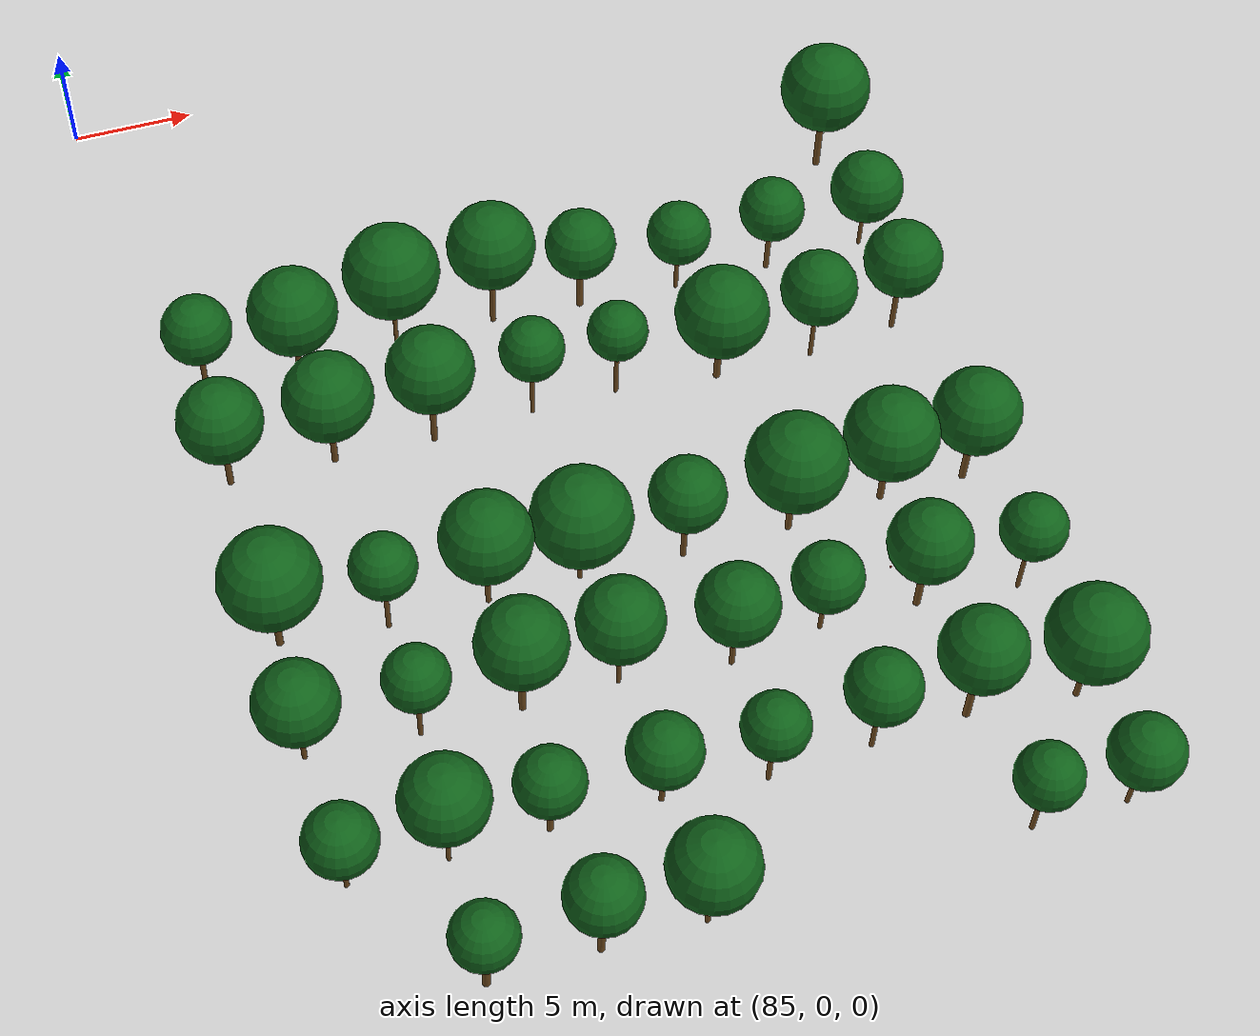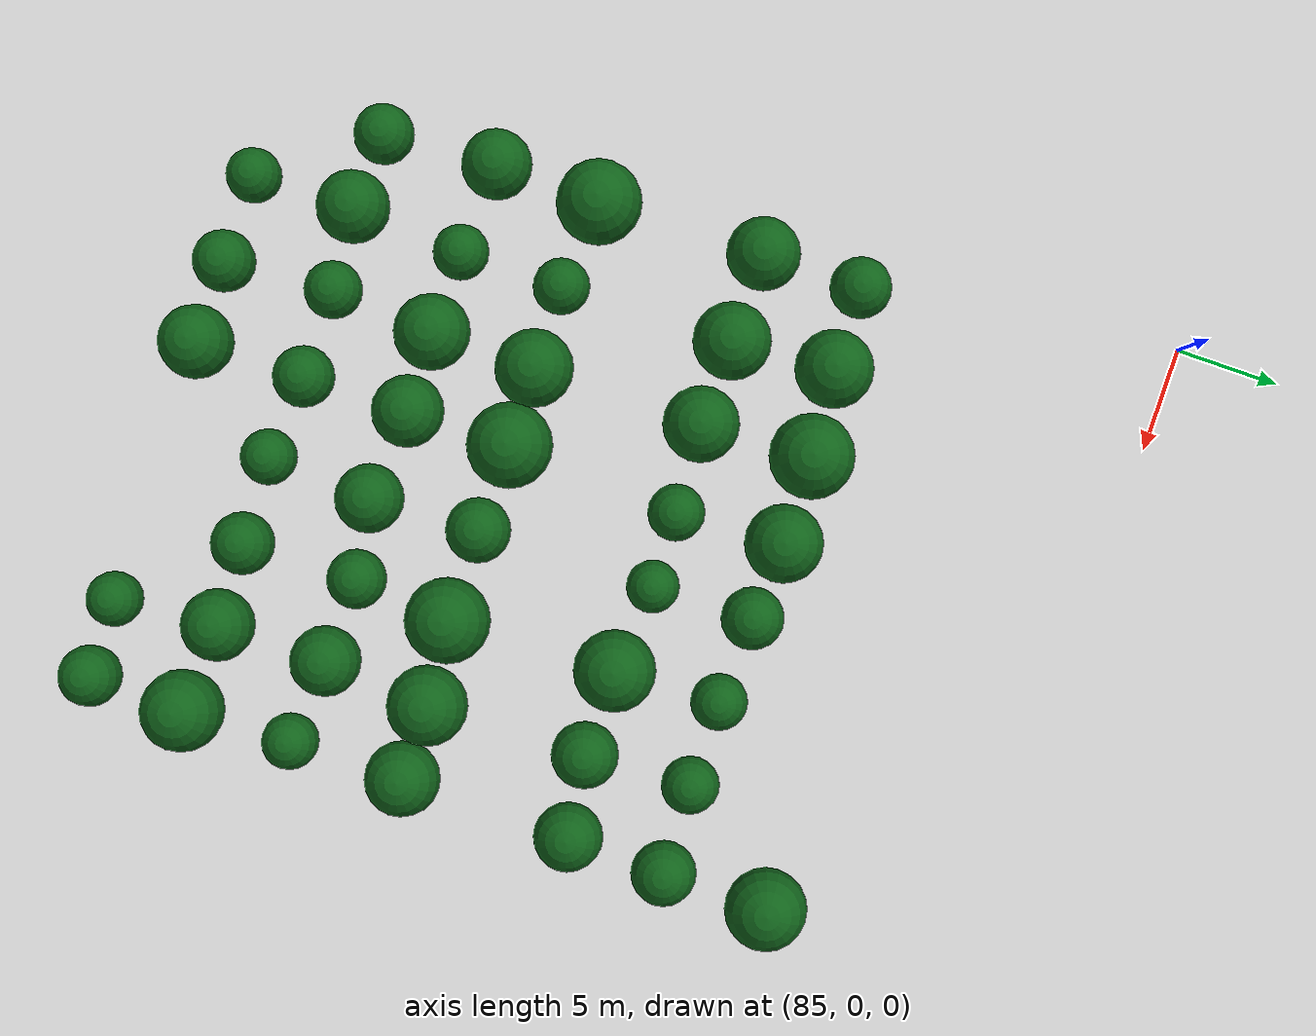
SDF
<sdf version="1.9">
 <world name="cheongsong_orchard">
  <model name="apple_tree_828">
   <static>true</static>
   <pose>91.80 -43.27 0 0 0 0</pose>
   <link name="link">
    <collision name="trunk_col">
     <pose>0 0 1.26 0 0 0</pose>
     <geometry><cylinder><radius>0.147</radius><length>2.52</length></cylinder></geometry>
    </collision>
    <visual name="trunk_vis">
     <pose>0 0 1.26 0 0 0</pose>
     <geometry><cylinder><radius>0.147</radius><length>2.52</length></cylinder></geometry>
     <material><ambient>0.35 0.22 0.08 1</ambient><diffuse>0.45 0.30 0.12 1</diffuse></material>
    </visual>
    <collision name="canopy_col">
     <pose>0 0 3.78 0 0 0</pose>
     <geometry><sphere><radius>1.26</radius></sphere></geometry>
    </collision>
    <visual name="canopy_vis">
     <pose>0 0 3.78 0 0 0</pose>
     <geometry><sphere><radius>1.26</radius></sphere></geometry>
     <material><ambient>0.04 0.28 0.06 1</ambient><diffuse>0.06 0.38 0.10 1</diffuse></material>
    </visual>
   </link>
  </model>
  <model name="apple_tree_829">
   <static>true</static>
   <pose>95.95 -43.17 0 0 0 0</pose>
   <link name="link">
    <collision name="trunk_col">
     <pose>0 0 1.39 0 0 0</pose>
     <geometry><cylinder><radius>0.133</radius><length>2.79</length></cylinder></geometry>
    </collision>
    <visual name="trunk_vis">
     <pose>0 0 1.39 0 0 0</pose>
     <geometry><cylinder><radius>0.133</radius><length>2.79</length></cylinder></geometry>
     <material><ambient>0.35 0.22 0.08 1</ambient><diffuse>0.45 0.30 0.12 1</diffuse></material>
    </visual>
    <collision name="canopy_col">
     <pose>0 0 4.21 0 0 0</pose>
     <geometry><sphere><radius>1.42</radius></sphere></geometry>
    </collision>
    <visual name="canopy_vis">
     <pose>0 0 4.21 0 0 0</pose>
     <geometry><sphere><radius>1.42</radius></sphere></geometry>
     <material><ambient>0.04 0.28 0.06 1</ambient><diffuse>0.06 0.38 0.10 1</diffuse></material>
    </visual>
   </link>
  </model>
  <model name="apple_tree_830">
   <static>true</static>
   <pose>99.82 -43.18 0 0 0 0</pose>
   <link name="link">
    <collision name="trunk_col">
     <pose>0 0 1.27 0 0 0</pose>
     <geometry><cylinder><radius>0.097</radius><length>2.54</length></cylinder></geometry>
    </collision>
    <visual name="trunk_vis">
     <pose>0 0 1.27 0 0 0</pose>
     <geometry><cylinder><radius>0.097</radius><length>2.54</length></cylinder></geometry>
     <material><ambient>0.35 0.22 0.08 1</ambient><diffuse>0.45 0.30 0.12 1</diffuse></material>
    </visual>
    <collision name="canopy_col">
     <pose>0 0 4.25 0 0 0</pose>
     <geometry><sphere><radius>1.70</radius></sphere></geometry>
    </collision>
    <visual name="canopy_vis">
     <pose>0 0 4.25 0 0 0</pose>
     <geometry><sphere><radius>1.70</radius></sphere></geometry>
     <material><ambient>0.04 0.28 0.06 1</ambient><diffuse>0.06 0.38 0.10 1</diffuse></material>
    </visual>
   </link>
  </model>
  <model name="apple_tree_833">
   <static>true</static>
   <pose>112.10 -43.00 0 0 0 0</pose>
   <link name="link">
    <collision name="trunk_col">
     <pose>0 0 1.28 0 0 0</pose>
     <geometry><cylinder><radius>0.100</radius><length>2.56</length></cylinder></geometry>
    </collision>
    <visual name="trunk_vis">
     <pose>0 0 1.28 0 0 0</pose>
     <geometry><cylinder><radius>0.100</radius><length>2.56</length></cylinder></geometry>
     <material><ambient>0.35 0.22 0.08 1</ambient><diffuse>0.45 0.30 0.12 1</diffuse></material>
    </visual>
    <collision name="canopy_col">
     <pose>0 0 3.82 0 0 0</pose>
     <geometry><sphere><radius>1.27</radius></sphere></geometry>
    </collision>
    <visual name="canopy_vis">
     <pose>0 0 3.82 0 0 0</pose>
     <geometry><sphere><radius>1.27</radius></sphere></geometry>
     <material><ambient>0.04 0.28 0.06 1</ambient><diffuse>0.06 0.38 0.10 1</diffuse></material>
    </visual>
   </link>
  </model>
  <model name="apple_tree_834">
   <static>true</static>
   <pose>115.81 -42.98 0 0 0 0</pose>
   <link name="link">
    <collision name="trunk_col">
     <pose>0 0 1.11 0 0 0</pose>
     <geometry><cylinder><radius>0.089</radius><length>2.22</length></cylinder></geometry>
    </collision>
    <visual name="trunk_vis">
     <pose>0 0 1.11 0 0 0</pose>
     <geometry><cylinder><radius>0.089</radius><length>2.22</length></cylinder></geometry>
     <material><ambient>0.35 0.22 0.08 1</ambient><diffuse>0.45 0.30 0.12 1</diffuse></material>
    </visual>
    <collision name="canopy_col">
     <pose>0 0 3.65 0 0 0</pose>
     <geometry><sphere><radius>1.42</radius></sphere></geometry>
    </collision>
    <visual name="canopy_vis">
     <pose>0 0 3.65 0 0 0</pose>
     <geometry><sphere><radius>1.42</radius></sphere></geometry>
     <material><ambient>0.04 0.28 0.06 1</ambient><diffuse>0.06 0.38 0.10 1</diffuse></material>
    </visual>
   </link>
  </model>
  <model name="apple_tree_882">
   <static>true</static>
   <pose>88.05 -38.35 0 0 0 0</pose>
   <link name="link">
    <collision name="trunk_col">
     <pose>0 0 1.03 0 0 0</pose>
     <geometry><cylinder><radius>0.096</radius><length>2.06</length></cylinder></geometry>
    </collision>
    <visual name="trunk_vis">
     <pose>0 0 1.03 0 0 0</pose>
     <geometry><cylinder><radius>0.096</radius><length>2.06</length></cylinder></geometry>
     <material><ambient>0.35 0.22 0.08 1</ambient><diffuse>0.45 0.30 0.12 1</diffuse></material>
    </visual>
    <collision name="canopy_col">
     <pose>0 0 3.45 0 0 0</pose>
     <geometry><sphere><radius>1.39</radius></sphere></geometry>
    </collision>
    <visual name="canopy_vis">
     <pose>0 0 3.45 0 0 0</pose>
     <geometry><sphere><radius>1.39</radius></sphere></geometry>
     <material><ambient>0.04 0.28 0.06 1</ambient><diffuse>0.06 0.38 0.10 1</diffuse></material>
    </visual>
   </link>
  </model>
  <model name="apple_tree_883">
   <static>true</static>
   <pose>91.76 -38.37 0 0 0 0</pose>
   <link name="link">
    <collision name="trunk_col">
     <pose>0 0 1.41 0 0 0</pose>
     <geometry><cylinder><radius>0.085</radius><length>2.82</length></cylinder></geometry>
    </collision>
    <visual name="trunk_vis">
     <pose>0 0 1.41 0 0 0</pose>
     <geometry><cylinder><radius>0.085</radius><length>2.82</length></cylinder></geometry>
     <material><ambient>0.35 0.22 0.08 1</ambient><diffuse>0.45 0.30 0.12 1</diffuse></material>
    </visual>
    <collision name="canopy_col">
     <pose>0 0 4.49 0 0 0</pose>
     <geometry><sphere><radius>1.67</radius></sphere></geometry>
    </collision>
    <visual name="canopy_vis">
     <pose>0 0 4.49 0 0 0</pose>
     <geometry><sphere><radius>1.67</radius></sphere></geometry>
     <material><ambient>0.04 0.28 0.06 1</ambient><diffuse>0.06 0.38 0.10 1</diffuse></material>
    </visual>
   </link>
  </model>
  <model name="apple_tree_884">
   <static>true</static>
   <pose>95.54 -38.23 0 0 0 0</pose>
   <link name="link">
    <collision name="trunk_col">
     <pose>0 0 1.08 0 0 0</pose>
     <geometry><cylinder><radius>0.123</radius><length>2.16</length></cylinder></geometry>
    </collision>
    <visual name="trunk_vis">
     <pose>0 0 1.08 0 0 0</pose>
     <geometry><cylinder><radius>0.123</radius><length>2.16</length></cylinder></geometry>
     <material><ambient>0.35 0.22 0.08 1</ambient><diffuse>0.45 0.30 0.12 1</diffuse></material>
    </visual>
    <collision name="canopy_col">
     <pose>0 0 3.50 0 0 0</pose>
     <geometry><sphere><radius>1.34</radius></sphere></geometry>
    </collision>
    <visual name="canopy_vis">
     <pose>0 0 3.50 0 0 0</pose>
     <geometry><sphere><radius>1.34</radius></sphere></geometry>
     <material><ambient>0.04 0.28 0.06 1</ambient><diffuse>0.06 0.38 0.10 1</diffuse></material>
    </visual>
   </link>
  </model>
  <model name="apple_tree_885">
   <static>true</static>
   <pose>99.73 -38.21 0 0 0 0</pose>
   <link name="link">
    <collision name="trunk_col">
     <pose>0 0 1.07 0 0 0</pose>
     <geometry><cylinder><radius>0.105</radius><length>2.14</length></cylinder></geometry>
    </collision>
    <visual name="trunk_vis">
     <pose>0 0 1.07 0 0 0</pose>
     <geometry><cylinder><radius>0.105</radius><length>2.14</length></cylinder></geometry>
     <material><ambient>0.35 0.22 0.08 1</ambient><diffuse>0.45 0.30 0.12 1</diffuse></material>
    </visual>
    <collision name="canopy_col">
     <pose>0 0 3.56 0 0 0</pose>
     <geometry><sphere><radius>1.42</radius></sphere></geometry>
    </collision>
    <visual name="canopy_vis">
     <pose>0 0 3.56 0 0 0</pose>
     <geometry><sphere><radius>1.42</radius></sphere></geometry>
     <material><ambient>0.04 0.28 0.06 1</ambient><diffuse>0.06 0.38 0.10 1</diffuse></material>
    </visual>
   </link>
  </model>
  <model name="apple_tree_886">
   <static>true</static>
   <pose>103.71 -38.47 0 0 0 0</pose>
   <link name="link">
    <collision name="trunk_col">
     <pose>0 0 1.25 0 0 0</pose>
     <geometry><cylinder><radius>0.100</radius><length>2.50</length></cylinder></geometry>
    </collision>
    <visual name="trunk_vis">
     <pose>0 0 1.25 0 0 0</pose>
     <geometry><cylinder><radius>0.100</radius><length>2.50</length></cylinder></geometry>
     <material><ambient>0.35 0.22 0.08 1</ambient><diffuse>0.45 0.30 0.12 1</diffuse></material>
    </visual>
    <collision name="canopy_col">
     <pose>0 0 3.79 0 0 0</pose>
     <geometry><sphere><radius>1.29</radius></sphere></geometry>
    </collision>
    <visual name="canopy_vis">
     <pose>0 0 3.79 0 0 0</pose>
     <geometry><sphere><radius>1.29</radius></sphere></geometry>
     <material><ambient>0.04 0.28 0.06 1</ambient><diffuse>0.06 0.38 0.10 1</diffuse></material>
    </visual>
   </link>
  </model>
  <model name="apple_tree_887">
   <static>true</static>
   <pose>107.79 -38.24 0 0 0 0</pose>
   <link name="link">
    <collision name="trunk_col">
     <pose>0 0 1.35 0 0 0</pose>
     <geometry><cylinder><radius>0.095</radius><length>2.69</length></cylinder></geometry>
    </collision>
    <visual name="trunk_vis">
     <pose>0 0 1.35 0 0 0</pose>
     <geometry><cylinder><radius>0.095</radius><length>2.69</length></cylinder></geometry>
     <material><ambient>0.35 0.22 0.08 1</ambient><diffuse>0.45 0.30 0.12 1</diffuse></material>
    </visual>
    <collision name="canopy_col">
     <pose>0 0 4.13 0 0 0</pose>
     <geometry><sphere><radius>1.44</radius></sphere></geometry>
    </collision>
    <visual name="canopy_vis">
     <pose>0 0 4.13 0 0 0</pose>
     <geometry><sphere><radius>1.44</radius></sphere></geometry>
     <material><ambient>0.04 0.28 0.06 1</ambient><diffuse>0.06 0.38 0.10 1</diffuse></material>
    </visual>
   </link>
  </model>
  <model name="apple_tree_888">
   <static>true</static>
   <pose>111.60 -38.01 0 0 0 0</pose>
   <link name="link">
    <collision name="trunk_col">
     <pose>0 0 1.44 0 0 0</pose>
     <geometry><cylinder><radius>0.143</radius><length>2.88</length></cylinder></geometry>
    </collision>
    <visual name="trunk_vis">
     <pose>0 0 1.44 0 0 0</pose>
     <geometry><cylinder><radius>0.143</radius><length>2.88</length></cylinder></geometry>
     <material><ambient>0.35 0.22 0.08 1</ambient><diffuse>0.45 0.30 0.12 1</diffuse></material>
    </visual>
    <collision name="canopy_col">
     <pose>0 0 4.54 0 0 0</pose>
     <geometry><sphere><radius>1.66</radius></sphere></geometry>
    </collision>
    <visual name="canopy_vis">
     <pose>0 0 4.54 0 0 0</pose>
     <geometry><sphere><radius>1.66</radius></sphere></geometry>
     <material><ambient>0.04 0.28 0.06 1</ambient><diffuse>0.06 0.38 0.10 1</diffuse></material>
    </visual>
   </link>
  </model>
  <model name="apple_tree_889">
   <static>true</static>
   <pose>115.84 -38.35 0 0 0 0</pose>
   <link name="link">
    <collision name="trunk_col">
     <pose>0 0 1.18 0 0 0</pose>
     <geometry><cylinder><radius>0.117</radius><length>2.35</length></cylinder></geometry>
    </collision>
    <visual name="trunk_vis">
     <pose>0 0 1.18 0 0 0</pose>
     <geometry><cylinder><radius>0.117</radius><length>2.35</length></cylinder></geometry>
     <material><ambient>0.35 0.22 0.08 1</ambient><diffuse>0.45 0.30 0.12 1</diffuse></material>
    </visual>
    <collision name="canopy_col">
     <pose>0 0 4.24 0 0 0</pose>
     <geometry><sphere><radius>1.89</radius></sphere></geometry>
    </collision>
    <visual name="canopy_vis">
     <pose>0 0 4.24 0 0 0</pose>
     <geometry><sphere><radius>1.89</radius></sphere></geometry>
     <material><ambient>0.04 0.28 0.06 1</ambient><diffuse>0.06 0.38 0.10 1</diffuse></material>
    </visual>
   </link>
  </model>
  <model name="apple_tree_934">
   <static>true</static>
   <pose>87.76 -32.94 0 0 0 0</pose>
   <link name="link">
    <collision name="trunk_col">
     <pose>0 0 1.15 0 0 0</pose>
     <geometry><cylinder><radius>0.100</radius><length>2.30</length></cylinder></geometry>
    </collision>
    <visual name="trunk_vis">
     <pose>0 0 1.15 0 0 0</pose>
     <geometry><cylinder><radius>0.100</radius><length>2.30</length></cylinder></geometry>
     <material><ambient>0.35 0.22 0.08 1</ambient><diffuse>0.45 0.30 0.12 1</diffuse></material>
    </visual>
    <collision name="canopy_col">
     <pose>0 0 3.92 0 0 0</pose>
     <geometry><sphere><radius>1.62</radius></sphere></geometry>
    </collision>
    <visual name="canopy_vis">
     <pose>0 0 3.92 0 0 0</pose>
     <geometry><sphere><radius>1.62</radius></sphere></geometry>
     <material><ambient>0.04 0.28 0.06 1</ambient><diffuse>0.06 0.38 0.10 1</diffuse></material>
    </visual>
   </link>
  </model>
  <model name="apple_tree_935">
   <static>true</static>
   <pose>92.07 -33.18 0 0 0 0</pose>
   <link name="link">
    <collision name="trunk_col">
     <pose>0 0 1.35 0 0 0</pose>
     <geometry><cylinder><radius>0.093</radius><length>2.70</length></cylinder></geometry>
    </collision>
    <visual name="trunk_vis">
     <pose>0 0 1.35 0 0 0</pose>
     <geometry><cylinder><radius>0.093</radius><length>2.70</length></cylinder></geometry>
     <material><ambient>0.35 0.22 0.08 1</ambient><diffuse>0.45 0.30 0.12 1</diffuse></material>
    </visual>
    <collision name="canopy_col">
     <pose>0 0 3.97 0 0 0</pose>
     <geometry><sphere><radius>1.28</radius></sphere></geometry>
    </collision>
    <visual name="canopy_vis">
     <pose>0 0 3.97 0 0 0</pose>
     <geometry><sphere><radius>1.28</radius></sphere></geometry>
     <material><ambient>0.04 0.28 0.06 1</ambient><diffuse>0.06 0.38 0.10 1</diffuse></material>
    </visual>
   </link>
  </model>
  <model name="apple_tree_936">
   <static>true</static>
   <pose>95.96 -33.16 0 0 0 0</pose>
   <link name="link">
    <collision name="trunk_col">
     <pose>0 0 1.40 0 0 0</pose>
     <geometry><cylinder><radius>0.138</radius><length>2.80</length></cylinder></geometry>
    </collision>
    <visual name="trunk_vis">
     <pose>0 0 1.40 0 0 0</pose>
     <geometry><cylinder><radius>0.138</radius><length>2.80</length></cylinder></geometry>
     <material><ambient>0.35 0.22 0.08 1</ambient><diffuse>0.45 0.30 0.12 1</diffuse></material>
    </visual>
    <collision name="canopy_col">
     <pose>0 0 4.55 0 0 0</pose>
     <geometry><sphere><radius>1.75</radius></sphere></geometry>
    </collision>
    <visual name="canopy_vis">
     <pose>0 0 4.55 0 0 0</pose>
     <geometry><sphere><radius>1.75</radius></sphere></geometry>
     <material><ambient>0.04 0.28 0.06 1</ambient><diffuse>0.06 0.38 0.10 1</diffuse></material>
    </visual>
   </link>
  </model>
  <model name="apple_tree_937">
   <static>true</static>
   <pose>99.69 -33.08 0 0 0 0</pose>
   <link name="link">
    <collision name="trunk_col">
     <pose>0 0 1.31 0 0 0</pose>
     <geometry><cylinder><radius>0.087</radius><length>2.62</length></cylinder></geometry>
    </collision>
    <visual name="trunk_vis">
     <pose>0 0 1.31 0 0 0</pose>
     <geometry><cylinder><radius>0.087</radius><length>2.62</length></cylinder></geometry>
     <material><ambient>0.35 0.22 0.08 1</ambient><diffuse>0.45 0.30 0.12 1</diffuse></material>
    </visual>
    <collision name="canopy_col">
     <pose>0 0 4.29 0 0 0</pose>
     <geometry><sphere><radius>1.66</radius></sphere></geometry>
    </collision>
    <visual name="canopy_vis">
     <pose>0 0 4.29 0 0 0</pose>
     <geometry><sphere><radius>1.66</radius></sphere></geometry>
     <material><ambient>0.04 0.28 0.06 1</ambient><diffuse>0.06 0.38 0.10 1</diffuse></material>
    </visual>
   </link>
  </model>
  <model name="apple_tree_938">
   <static>true</static>
   <pose>104.00 -33.48 0 0 0 0</pose>
   <link name="link">
    <collision name="trunk_col">
     <pose>0 0 1.23 0 0 0</pose>
     <geometry><cylinder><radius>0.106</radius><length>2.46</length></cylinder></geometry>
    </collision>
    <visual name="trunk_vis">
     <pose>0 0 1.23 0 0 0</pose>
     <geometry><cylinder><radius>0.106</radius><length>2.46</length></cylinder></geometry>
     <material><ambient>0.35 0.22 0.08 1</ambient><diffuse>0.45 0.30 0.12 1</diffuse></material>
    </visual>
    <collision name="canopy_col">
     <pose>0 0 4.04 0 0 0</pose>
     <geometry><sphere><radius>1.59</radius></sphere></geometry>
    </collision>
    <visual name="canopy_vis">
     <pose>0 0 4.04 0 0 0</pose>
     <geometry><sphere><radius>1.59</radius></sphere></geometry>
     <material><ambient>0.04 0.28 0.06 1</ambient><diffuse>0.06 0.38 0.10 1</diffuse></material>
    </visual>
   </link>
  </model>
  <model name="apple_tree_939">
   <static>true</static>
   <pose>107.71 -32.94 0 0 0 0</pose>
   <link name="link">
    <collision name="trunk_col">
     <pose>0 0 1.02 0 0 0</pose>
     <geometry><cylinder><radius>0.091</radius><length>2.05</length></cylinder></geometry>
    </collision>
    <visual name="trunk_vis">
     <pose>0 0 1.02 0 0 0</pose>
     <geometry><cylinder><radius>0.091</radius><length>2.05</length></cylinder></geometry>
     <material><ambient>0.35 0.22 0.08 1</ambient><diffuse>0.45 0.30 0.12 1</diffuse></material>
    </visual>
    <collision name="canopy_col">
     <pose>0 0 3.43 0 0 0</pose>
     <geometry><sphere><radius>1.38</radius></sphere></geometry>
    </collision>
    <visual name="canopy_vis">
     <pose>0 0 3.43 0 0 0</pose>
     <geometry><sphere><radius>1.38</radius></sphere></geometry>
     <material><ambient>0.04 0.28 0.06 1</ambient><diffuse>0.06 0.38 0.10 1</diffuse></material>
    </visual>
   </link>
  </model>
  <model name="apple_tree_940">
   <static>true</static>
   <pose>111.62 -32.95 0 0 0 0</pose>
   <link name="link">
    <collision name="trunk_col">
     <pose>0 0 1.27 0 0 0</pose>
     <geometry><cylinder><radius>0.138</radius><length>2.55</length></cylinder></geometry>
    </collision>
    <visual name="trunk_vis">
     <pose>0 0 1.27 0 0 0</pose>
     <geometry><cylinder><radius>0.138</radius><length>2.55</length></cylinder></geometry>
     <material><ambient>0.35 0.22 0.08 1</ambient><diffuse>0.45 0.30 0.12 1</diffuse></material>
    </visual>
    <collision name="canopy_col">
     <pose>0 0 4.17 0 0 0</pose>
     <geometry><sphere><radius>1.62</radius></sphere></geometry>
    </collision>
    <visual name="canopy_vis">
     <pose>0 0 4.17 0 0 0</pose>
     <geometry><sphere><radius>1.62</radius></sphere></geometry>
     <material><ambient>0.04 0.28 0.06 1</ambient><diffuse>0.06 0.38 0.10 1</diffuse></material>
    </visual>
   </link>
  </model>
  <model name="apple_tree_941">
   <static>true</static>
   <pose>115.61 -33.31 0 0 0 0</pose>
   <link name="link">
    <collision name="trunk_col">
     <pose>0 0 1.34 0 0 0</pose>
     <geometry><cylinder><radius>0.088</radius><length>2.68</length></cylinder></geometry>
    </collision>
    <visual name="trunk_vis">
     <pose>0 0 1.34 0 0 0</pose>
     <geometry><cylinder><radius>0.088</radius><length>2.68</length></cylinder></geometry>
     <material><ambient>0.35 0.22 0.08 1</ambient><diffuse>0.45 0.30 0.12 1</diffuse></material>
    </visual>
    <collision name="canopy_col">
     <pose>0 0 3.98 0 0 0</pose>
     <geometry><sphere><radius>1.30</radius></sphere></geometry>
    </collision>
    <visual name="canopy_vis">
     <pose>0 0 3.98 0 0 0</pose>
     <geometry><sphere><radius>1.30</radius></sphere></geometry>
     <material><ambient>0.04 0.28 0.06 1</ambient><diffuse>0.06 0.38 0.10 1</diffuse></material>
    </visual>
   </link>
  </model>
  <model name="apple_tree_991">
   <static>true</static>
   <pose>87.95 -27.93 0 0 0 0</pose>
   <link name="link">
    <collision name="trunk_col">
     <pose>0 0 1.23 0 0 0</pose>
     <geometry><cylinder><radius>0.138</radius><length>2.46</length></cylinder></geometry>
    </collision>
    <visual name="trunk_vis">
     <pose>0 0 1.23 0 0 0</pose>
     <geometry><cylinder><radius>0.138</radius><length>2.46</length></cylinder></geometry>
     <material><ambient>0.35 0.22 0.08 1</ambient><diffuse>0.45 0.30 0.12 1</diffuse></material>
    </visual>
    <collision name="canopy_col">
     <pose>0 0 4.42 0 0 0</pose>
     <geometry><sphere><radius>1.96</radius></sphere></geometry>
    </collision>
    <visual name="canopy_vis">
     <pose>0 0 4.42 0 0 0</pose>
     <geometry><sphere><radius>1.96</radius></sphere></geometry>
     <material><ambient>0.04 0.28 0.06 1</ambient><diffuse>0.06 0.38 0.10 1</diffuse></material>
    </visual>
   </link>
  </model>
  <model name="apple_tree_992">
   <static>true</static>
   <pose>92.07 -28.34 0 0 0 0</pose>
   <link name="link">
    <collision name="trunk_col">
     <pose>0 0 1.41 0 0 0</pose>
     <geometry><cylinder><radius>0.097</radius><length>2.81</length></cylinder></geometry>
    </collision>
    <visual name="trunk_vis">
     <pose>0 0 1.41 0 0 0</pose>
     <geometry><cylinder><radius>0.097</radius><length>2.81</length></cylinder></geometry>
     <material><ambient>0.35 0.22 0.08 1</ambient><diffuse>0.45 0.30 0.12 1</diffuse></material>
    </visual>
    <collision name="canopy_col">
     <pose>0 0 4.11 0 0 0</pose>
     <geometry><sphere><radius>1.30</radius></sphere></geometry>
    </collision>
    <visual name="canopy_vis">
     <pose>0 0 4.11 0 0 0</pose>
     <geometry><sphere><radius>1.30</radius></sphere></geometry>
     <material><ambient>0.04 0.28 0.06 1</ambient><diffuse>0.06 0.38 0.10 1</diffuse></material>
    </visual>
   </link>
  </model>
  <model name="apple_tree_993">
   <static>true</static>
   <pose>95.99 -28.29 0 0 0 0</pose>
   <link name="link">
    <collision name="trunk_col">
     <pose>0 0 1.26 0 0 0</pose>
     <geometry><cylinder><radius>0.107</radius><length>2.52</length></cylinder></geometry>
    </collision>
    <visual name="trunk_vis">
     <pose>0 0 1.26 0 0 0</pose>
     <geometry><cylinder><radius>0.107</radius><length>2.52</length></cylinder></geometry>
     <material><ambient>0.35 0.22 0.08 1</ambient><diffuse>0.45 0.30 0.12 1</diffuse></material>
    </visual>
    <collision name="canopy_col">
     <pose>0 0 4.32 0 0 0</pose>
     <geometry><sphere><radius>1.80</radius></sphere></geometry>
    </collision>
    <visual name="canopy_vis">
     <pose>0 0 4.32 0 0 0</pose>
     <geometry><sphere><radius>1.80</radius></sphere></geometry>
     <material><ambient>0.04 0.28 0.06 1</ambient><diffuse>0.06 0.38 0.10 1</diffuse></material>
    </visual>
   </link>
  </model>
  <model name="apple_tree_994">
   <static>true</static>
   <pose>99.65 -28.24 0 0 0 0</pose>
   <link name="link">
    <collision name="trunk_col">
     <pose>0 0 1.05 0 0 0</pose>
     <geometry><cylinder><radius>0.092</radius><length>2.09</length></cylinder></geometry>
    </collision>
    <visual name="trunk_vis">
     <pose>0 0 1.05 0 0 0</pose>
     <geometry><cylinder><radius>0.092</radius><length>2.09</length></cylinder></geometry>
     <material><ambient>0.35 0.22 0.08 1</ambient><diffuse>0.45 0.30 0.12 1</diffuse></material>
    </visual>
    <collision name="canopy_col">
     <pose>0 0 4.07 0 0 0</pose>
     <geometry><sphere><radius>1.98</radius></sphere></geometry>
    </collision>
    <visual name="canopy_vis">
     <pose>0 0 4.07 0 0 0</pose>
     <geometry><sphere><radius>1.98</radius></sphere></geometry>
     <material><ambient>0.04 0.28 0.06 1</ambient><diffuse>0.06 0.38 0.10 1</diffuse></material>
    </visual>
   </link>
  </model>
  <model name="apple_tree_995">
   <static>true</static>
   <pose>103.77 -28.34 0 0 0 0</pose>
   <link name="link">
    <collision name="trunk_col">
     <pose>0 0 1.26 0 0 0</pose>
     <geometry><cylinder><radius>0.114</radius><length>2.52</length></cylinder></geometry>
    </collision>
    <visual name="trunk_vis">
     <pose>0 0 1.26 0 0 0</pose>
     <geometry><cylinder><radius>0.114</radius><length>2.52</length></cylinder></geometry>
     <material><ambient>0.35 0.22 0.08 1</ambient><diffuse>0.45 0.30 0.12 1</diffuse></material>
    </visual>
    <collision name="canopy_col">
     <pose>0 0 4.02 0 0 0</pose>
     <geometry><sphere><radius>1.50</radius></sphere></geometry>
    </collision>
    <visual name="canopy_vis">
     <pose>0 0 4.02 0 0 0</pose>
     <geometry><sphere><radius>1.50</radius></sphere></geometry>
     <material><ambient>0.04 0.28 0.06 1</ambient><diffuse>0.06 0.38 0.10 1</diffuse></material>
    </visual>
   </link>
  </model>
  <model name="apple_tree_996">
   <static>true</static>
   <pose>108.08 -28.30 0 0 0 0</pose>
   <link name="link">
    <collision name="trunk_col">
     <pose>0 0 1.18 0 0 0</pose>
     <geometry><cylinder><radius>0.128</radius><length>2.36</length></cylinder></geometry>
    </collision>
    <visual name="trunk_vis">
     <pose>0 0 1.18 0 0 0</pose>
     <geometry><cylinder><radius>0.128</radius><length>2.36</length></cylinder></geometry>
     <material><ambient>0.35 0.22 0.08 1</ambient><diffuse>0.45 0.30 0.12 1</diffuse></material>
    </visual>
    <collision name="canopy_col">
     <pose>0 0 4.33 0 0 0</pose>
     <geometry><sphere><radius>1.97</radius></sphere></geometry>
    </collision>
    <visual name="canopy_vis">
     <pose>0 0 4.33 0 0 0</pose>
     <geometry><sphere><radius>1.97</radius></sphere></geometry>
     <material><ambient>0.04 0.28 0.06 1</ambient><diffuse>0.06 0.38 0.10 1</diffuse></material>
    </visual>
   </link>
  </model>
  <model name="apple_tree_997">
   <static>true</static>
   <pose>112.04 -27.93 0 0 0 0</pose>
   <link name="link">
    <collision name="trunk_col">
     <pose>0 0 1.15 0 0 0</pose>
     <geometry><cylinder><radius>0.130</radius><length>2.30</length></cylinder></geometry>
    </collision>
    <visual name="trunk_vis">
     <pose>0 0 1.15 0 0 0</pose>
     <geometry><cylinder><radius>0.130</radius><length>2.30</length></cylinder></geometry>
     <material><ambient>0.35 0.22 0.08 1</ambient><diffuse>0.45 0.30 0.12 1</diffuse></material>
    </visual>
    <collision name="canopy_col">
     <pose>0 0 4.16 0 0 0</pose>
     <geometry><sphere><radius>1.86</radius></sphere></geometry>
    </collision>
    <visual name="canopy_vis">
     <pose>0 0 4.16 0 0 0</pose>
     <geometry><sphere><radius>1.86</radius></sphere></geometry>
     <material><ambient>0.04 0.28 0.06 1</ambient><diffuse>0.06 0.38 0.10 1</diffuse></material>
    </visual>
   </link>
  </model>
  <model name="apple_tree_998">
   <static>true</static>
   <pose>115.52 -27.91 0 0 0 0</pose>
   <link name="link">
    <collision name="trunk_col">
     <pose>0 0 1.27 0 0 0</pose>
     <geometry><cylinder><radius>0.139</radius><length>2.54</length></cylinder></geometry>
    </collision>
    <visual name="trunk_vis">
     <pose>0 0 1.27 0 0 0</pose>
     <geometry><cylinder><radius>0.139</radius><length>2.54</length></cylinder></geometry>
     <material><ambient>0.35 0.22 0.08 1</ambient><diffuse>0.45 0.30 0.12 1</diffuse></material>
    </visual>
    <collision name="canopy_col">
     <pose>0 0 4.27 0 0 0</pose>
     <geometry><sphere><radius>1.73</radius></sphere></geometry>
    </collision>
    <visual name="canopy_vis">
     <pose>0 0 4.27 0 0 0</pose>
     <geometry><sphere><radius>1.73</radius></sphere></geometry>
     <material><ambient>0.04 0.28 0.06 1</ambient><diffuse>0.06 0.38 0.10 1</diffuse></material>
    </visual>
   </link>
  </model>
  <model name="apple_tree_1050">
   <static>true</static>
   <pose>87.69 -20.14 0 0 0 0</pose>
   <link name="link">
    <collision name="trunk_col">
     <pose>0 0 1.20 0 0 0</pose>
     <geometry><cylinder><radius>0.127</radius><length>2.39</length></cylinder></geometry>
    </collision>
    <visual name="trunk_vis">
     <pose>0 0 1.20 0 0 0</pose>
     <geometry><cylinder><radius>0.127</radius><length>2.39</length></cylinder></geometry>
     <material><ambient>0.35 0.22 0.08 1</ambient><diffuse>0.45 0.30 0.12 1</diffuse></material>
    </visual>
    <collision name="canopy_col">
     <pose>0 0 4.09 0 0 0</pose>
     <geometry><sphere><radius>1.70</radius></sphere></geometry>
    </collision>
    <visual name="canopy_vis">
     <pose>0 0 4.09 0 0 0</pose>
     <geometry><sphere><radius>1.70</radius></sphere></geometry>
     <material><ambient>0.04 0.28 0.06 1</ambient><diffuse>0.06 0.38 0.10 1</diffuse></material>
    </visual>
   </link>
  </model>
  <model name="apple_tree_1051">
   <static>true</static>
   <pose>91.90 -20.21 0 0 0 0</pose>
   <link name="link">
    <collision name="trunk_col">
     <pose>0 0 1.17 0 0 0</pose>
     <geometry><cylinder><radius>0.126</radius><length>2.34</length></cylinder></geometry>
    </collision>
    <visual name="trunk_vis">
     <pose>0 0 1.17 0 0 0</pose>
     <geometry><cylinder><radius>0.126</radius><length>2.34</length></cylinder></geometry>
     <material><ambient>0.35 0.22 0.08 1</ambient><diffuse>0.45 0.30 0.12 1</diffuse></material>
    </visual>
    <collision name="canopy_col">
     <pose>0 0 4.14 0 0 0</pose>
     <geometry><sphere><radius>1.80</radius></sphere></geometry>
    </collision>
    <visual name="canopy_vis">
     <pose>0 0 4.14 0 0 0</pose>
     <geometry><sphere><radius>1.80</radius></sphere></geometry>
     <material><ambient>0.04 0.28 0.06 1</ambient><diffuse>0.06 0.38 0.10 1</diffuse></material>
    </visual>
   </link>
  </model>
  <model name="apple_tree_1052">
   <static>true</static>
   <pose>95.95 -20.31 0 0 0 0</pose>
   <link name="link">
    <collision name="trunk_col">
     <pose>0 0 1.37 0 0 0</pose>
     <geometry><cylinder><radius>0.123</radius><length>2.74</length></cylinder></geometry>
    </collision>
    <visual name="trunk_vis">
     <pose>0 0 1.37 0 0 0</pose>
     <geometry><cylinder><radius>0.123</radius><length>2.74</length></cylinder></geometry>
     <material><ambient>0.35 0.22 0.08 1</ambient><diffuse>0.45 0.30 0.12 1</diffuse></material>
    </visual>
    <collision name="canopy_col">
     <pose>0 0 4.50 0 0 0</pose>
     <geometry><sphere><radius>1.75</radius></sphere></geometry>
    </collision>
    <visual name="canopy_vis">
     <pose>0 0 4.50 0 0 0</pose>
     <geometry><sphere><radius>1.75</radius></sphere></geometry>
     <material><ambient>0.04 0.28 0.06 1</ambient><diffuse>0.06 0.38 0.10 1</diffuse></material>
    </visual>
   </link>
  </model>
  <model name="apple_tree_1053">
   <static>true</static>
   <pose>100.09 -20.08 0 0 0 0</pose>
   <link name="link">
    <collision name="trunk_col">
     <pose>0 0 1.37 0 0 0</pose>
     <geometry><cylinder><radius>0.086</radius><length>2.73</length></cylinder></geometry>
    </collision>
    <visual name="trunk_vis">
     <pose>0 0 1.37 0 0 0</pose>
     <geometry><cylinder><radius>0.086</radius><length>2.73</length></cylinder></geometry>
     <material><ambient>0.35 0.22 0.08 1</ambient><diffuse>0.45 0.30 0.12 1</diffuse></material>
    </visual>
    <collision name="canopy_col">
     <pose>0 0 4.04 0 0 0</pose>
     <geometry><sphere><radius>1.31</radius></sphere></geometry>
    </collision>
    <visual name="canopy_vis">
     <pose>0 0 4.04 0 0 0</pose>
     <geometry><sphere><radius>1.31</radius></sphere></geometry>
     <material><ambient>0.04 0.28 0.06 1</ambient><diffuse>0.06 0.38 0.10 1</diffuse></material>
    </visual>
   </link>
  </model>
  <model name="apple_tree_1054">
   <static>true</static>
   <pose>103.62 -20.00 0 0 0 0</pose>
   <link name="link">
    <collision name="trunk_col">
     <pose>0 0 1.31 0 0 0</pose>
     <geometry><cylinder><radius>0.093</radius><length>2.63</length></cylinder></geometry>
    </collision>
    <visual name="trunk_vis">
     <pose>0 0 1.31 0 0 0</pose>
     <geometry><cylinder><radius>0.093</radius><length>2.63</length></cylinder></geometry>
     <material><ambient>0.35 0.22 0.08 1</ambient><diffuse>0.45 0.30 0.12 1</diffuse></material>
    </visual>
    <collision name="canopy_col">
     <pose>0 0 3.85 0 0 0</pose>
     <geometry><sphere><radius>1.22</radius></sphere></geometry>
    </collision>
    <visual name="canopy_vis">
     <pose>0 0 3.85 0 0 0</pose>
     <geometry><sphere><radius>1.22</radius></sphere></geometry>
     <material><ambient>0.04 0.28 0.06 1</ambient><diffuse>0.06 0.38 0.10 1</diffuse></material>
    </visual>
   </link>
  </model>
  <model name="apple_tree_1055">
   <static>true</static>
   <pose>107.80 -20.40 0 0 0 0</pose>
   <link name="link">
    <collision name="trunk_col">
     <pose>0 0 1.09 0 0 0</pose>
     <geometry><cylinder><radius>0.139</radius><length>2.19</length></cylinder></geometry>
    </collision>
    <visual name="trunk_vis">
     <pose>0 0 1.09 0 0 0</pose>
     <geometry><cylinder><radius>0.139</radius><length>2.19</length></cylinder></geometry>
     <material><ambient>0.35 0.22 0.08 1</ambient><diffuse>0.45 0.30 0.12 1</diffuse></material>
    </visual>
    <collision name="canopy_col">
     <pose>0 0 4.07 0 0 0</pose>
     <geometry><sphere><radius>1.89</radius></sphere></geometry>
    </collision>
    <visual name="canopy_vis">
     <pose>0 0 4.07 0 0 0</pose>
     <geometry><sphere><radius>1.89</radius></sphere></geometry>
     <material><ambient>0.04 0.28 0.06 1</ambient><diffuse>0.06 0.38 0.10 1</diffuse></material>
    </visual>
   </link>
  </model>
  <model name="apple_tree_1056">
   <static>true</static>
   <pose>111.83 -20.44 0 0 0 0</pose>
   <link name="link">
    <collision name="trunk_col">
     <pose>0 0 1.35 0 0 0</pose>
     <geometry><cylinder><radius>0.090</radius><length>2.70</length></cylinder></geometry>
    </collision>
    <visual name="trunk_vis">
     <pose>0 0 1.35 0 0 0</pose>
     <geometry><cylinder><radius>0.090</radius><length>2.70</length></cylinder></geometry>
     <material><ambient>0.35 0.22 0.08 1</ambient><diffuse>0.45 0.30 0.12 1</diffuse></material>
    </visual>
    <collision name="canopy_col">
     <pose>0 0 4.24 0 0 0</pose>
     <geometry><sphere><radius>1.54</radius></sphere></geometry>
    </collision>
    <visual name="canopy_vis">
     <pose>0 0 4.24 0 0 0</pose>
     <geometry><sphere><radius>1.54</radius></sphere></geometry>
     <material><ambient>0.04 0.28 0.06 1</ambient><diffuse>0.06 0.38 0.10 1</diffuse></material>
    </visual>
   </link>
  </model>
  <model name="apple_tree_1057">
   <static>true</static>
   <pose>115.58 -19.95 0 0 0 0</pose>
   <link name="link">
    <collision name="trunk_col">
     <pose>0 0 1.34 0 0 0</pose>
     <geometry><cylinder><radius>0.111</radius><length>2.67</length></cylinder></geometry>
    </collision>
    <visual name="trunk_vis">
     <pose>0 0 1.34 0 0 0</pose>
     <geometry><cylinder><radius>0.111</radius><length>2.67</length></cylinder></geometry>
     <material><ambient>0.35 0.22 0.08 1</ambient><diffuse>0.45 0.30 0.12 1</diffuse></material>
    </visual>
    <collision name="canopy_col">
     <pose>0 0 4.26 0 0 0</pose>
     <geometry><sphere><radius>1.59</radius></sphere></geometry>
    </collision>
    <visual name="canopy_vis">
     <pose>0 0 4.26 0 0 0</pose>
     <geometry><sphere><radius>1.59</radius></sphere></geometry>
     <material><ambient>0.04 0.28 0.06 1</ambient><diffuse>0.06 0.38 0.10 1</diffuse></material>
    </visual>
   </link>
  </model>
  <model name="apple_tree_1107">
   <static>true</static>
   <pose>87.71 -15.46 0 0 0 0</pose>
   <link name="link">
    <collision name="trunk_col">
     <pose>0 0 1.30 0 0 0</pose>
     <geometry><cylinder><radius>0.111</radius><length>2.60</length></cylinder></geometry>
    </collision>
    <visual name="trunk_vis">
     <pose>0 0 1.30 0 0 0</pose>
     <geometry><cylinder><radius>0.111</radius><length>2.60</length></cylinder></geometry>
     <material><ambient>0.35 0.22 0.08 1</ambient><diffuse>0.45 0.30 0.12 1</diffuse></material>
    </visual>
    <collision name="canopy_col">
     <pose>0 0 4.03 0 0 0</pose>
     <geometry><sphere><radius>1.42</radius></sphere></geometry>
    </collision>
    <visual name="canopy_vis">
     <pose>0 0 4.03 0 0 0</pose>
     <geometry><sphere><radius>1.42</radius></sphere></geometry>
     <material><ambient>0.04 0.28 0.06 1</ambient><diffuse>0.06 0.38 0.10 1</diffuse></material>
    </visual>
   </link>
  </model>
  <model name="apple_tree_1108">
   <static>true</static>
   <pose>91.56 -15.39 0 0 0 0</pose>
   <link name="link">
    <collision name="trunk_col">
     <pose>0 0 0.99 0 0 0</pose>
     <geometry><cylinder><radius>0.124</radius><length>1.97</length></cylinder></geometry>
    </collision>
    <visual name="trunk_vis">
     <pose>0 0 0.99 0 0 0</pose>
     <geometry><cylinder><radius>0.124</radius><length>1.97</length></cylinder></geometry>
     <material><ambient>0.35 0.22 0.08 1</ambient><diffuse>0.45 0.30 0.12 1</diffuse></material>
    </visual>
    <collision name="canopy_col">
     <pose>0 0 3.79 0 0 0</pose>
     <geometry><sphere><radius>1.82</radius></sphere></geometry>
    </collision>
    <visual name="canopy_vis">
     <pose>0 0 3.79 0 0 0</pose>
     <geometry><sphere><radius>1.82</radius></sphere></geometry>
     <material><ambient>0.04 0.28 0.06 1</ambient><diffuse>0.06 0.38 0.10 1</diffuse></material>
    </visual>
   </link>
  </model>
  <model name="apple_tree_1109">
   <static>true</static>
   <pose>95.70 -15.10 0 0 0 0</pose>
   <link name="link">
    <collision name="trunk_col">
     <pose>0 0 1.29 0 0 0</pose>
     <geometry><cylinder><radius>0.086</radius><length>2.58</length></cylinder></geometry>
    </collision>
    <visual name="trunk_vis">
     <pose>0 0 1.29 0 0 0</pose>
     <geometry><cylinder><radius>0.086</radius><length>2.58</length></cylinder></geometry>
     <material><ambient>0.35 0.22 0.08 1</ambient><diffuse>0.45 0.30 0.12 1</diffuse></material>
    </visual>
    <collision name="canopy_col">
     <pose>0 0 4.54 0 0 0</pose>
     <geometry><sphere><radius>1.96</radius></sphere></geometry>
    </collision>
    <visual name="canopy_vis">
     <pose>0 0 4.54 0 0 0</pose>
     <geometry><sphere><radius>1.96</radius></sphere></geometry>
     <material><ambient>0.04 0.28 0.06 1</ambient><diffuse>0.06 0.38 0.10 1</diffuse></material>
    </visual>
   </link>
  </model>
  <model name="apple_tree_1110">
   <static>true</static>
   <pose>99.84 -15.03 0 0 0 0</pose>
   <link name="link">
    <collision name="trunk_col">
     <pose>0 0 1.44 0 0 0</pose>
     <geometry><cylinder><radius>0.117</radius><length>2.88</length></cylinder></geometry>
    </collision>
    <visual name="trunk_vis">
     <pose>0 0 1.44 0 0 0</pose>
     <geometry><cylinder><radius>0.117</radius><length>2.88</length></cylinder></geometry>
     <material><ambient>0.35 0.22 0.08 1</ambient><diffuse>0.45 0.30 0.12 1</diffuse></material>
    </visual>
    <collision name="canopy_col">
     <pose>0 0 4.68 0 0 0</pose>
     <geometry><sphere><radius>1.80</radius></sphere></geometry>
    </collision>
    <visual name="canopy_vis">
     <pose>0 0 4.68 0 0 0</pose>
     <geometry><sphere><radius>1.80</radius></sphere></geometry>
     <material><ambient>0.04 0.28 0.06 1</ambient><diffuse>0.06 0.38 0.10 1</diffuse></material>
    </visual>
   </link>
  </model>
  <model name="apple_tree_1111">
   <static>true</static>
   <pose>103.52 -15.23 0 0 0 0</pose>
   <link name="link">
    <collision name="trunk_col">
     <pose>0 0 1.18 0 0 0</pose>
     <geometry><cylinder><radius>0.140</radius><length>2.35</length></cylinder></geometry>
    </collision>
    <visual name="trunk_vis">
     <pose>0 0 1.18 0 0 0</pose>
     <geometry><cylinder><radius>0.140</radius><length>2.35</length></cylinder></geometry>
     <material><ambient>0.35 0.22 0.08 1</ambient><diffuse>0.45 0.30 0.12 1</diffuse></material>
    </visual>
    <collision name="canopy_col">
     <pose>0 0 3.81 0 0 0</pose>
     <geometry><sphere><radius>1.45</radius></sphere></geometry>
    </collision>
    <visual name="canopy_vis">
     <pose>0 0 3.81 0 0 0</pose>
     <geometry><sphere><radius>1.45</radius></sphere></geometry>
     <material><ambient>0.04 0.28 0.06 1</ambient><diffuse>0.06 0.38 0.10 1</diffuse></material>
    </visual>
   </link>
  </model>
  <model name="apple_tree_1112">
   <static>true</static>
   <pose>107.66 -15.42 0 0 0 0</pose>
   <link name="link">
    <collision name="trunk_col">
     <pose>0 0 1.02 0 0 0</pose>
     <geometry><cylinder><radius>0.092</radius><length>2.05</length></cylinder></geometry>
    </collision>
    <visual name="trunk_vis">
     <pose>0 0 1.02 0 0 0</pose>
     <geometry><cylinder><radius>0.092</radius><length>2.05</length></cylinder></geometry>
     <material><ambient>0.35 0.22 0.08 1</ambient><diffuse>0.45 0.30 0.12 1</diffuse></material>
    </visual>
    <collision name="canopy_col">
     <pose>0 0 3.36 0 0 0</pose>
     <geometry><sphere><radius>1.32</radius></sphere></geometry>
    </collision>
    <visual name="canopy_vis">
     <pose>0 0 3.36 0 0 0</pose>
     <geometry><sphere><radius>1.32</radius></sphere></geometry>
     <material><ambient>0.04 0.28 0.06 1</ambient><diffuse>0.06 0.38 0.10 1</diffuse></material>
    </visual>
   </link>
  </model>
  <model name="apple_tree_1113">
   <static>true</static>
   <pose>111.66 -15.44 0 0 0 0</pose>
   <link name="link">
    <collision name="trunk_col">
     <pose>0 0 1.12 0 0 0</pose>
     <geometry><cylinder><radius>0.109</radius><length>2.25</length></cylinder></geometry>
    </collision>
    <visual name="trunk_vis">
     <pose>0 0 1.12 0 0 0</pose>
     <geometry><cylinder><radius>0.109</radius><length>2.25</length></cylinder></geometry>
     <material><ambient>0.35 0.22 0.08 1</ambient><diffuse>0.45 0.30 0.12 1</diffuse></material>
    </visual>
    <collision name="canopy_col">
     <pose>0 0 3.58 0 0 0</pose>
     <geometry><sphere><radius>1.34</radius></sphere></geometry>
    </collision>
    <visual name="canopy_vis">
     <pose>0 0 3.58 0 0 0</pose>
     <geometry><sphere><radius>1.34</radius></sphere></geometry>
     <material><ambient>0.04 0.28 0.06 1</ambient><diffuse>0.06 0.38 0.10 1</diffuse></material>
    </visual>
   </link>
  </model>
  <model name="apple_tree_1114">
   <static>true</static>
   <pose>115.88 -15.29 0 0 0 0</pose>
   <link name="link">
    <collision name="trunk_col">
     <pose>0 0 0.99 0 0 0</pose>
     <geometry><cylinder><radius>0.084</radius><length>1.98</length></cylinder></geometry>
    </collision>
    <visual name="trunk_vis">
     <pose>0 0 0.99 0 0 0</pose>
     <geometry><cylinder><radius>0.084</radius><length>1.98</length></cylinder></geometry>
     <material><ambient>0.35 0.22 0.08 1</ambient><diffuse>0.45 0.30 0.12 1</diffuse></material>
    </visual>
    <collision name="canopy_col">
     <pose>0 0 3.49 0 0 0</pose>
     <geometry><sphere><radius>1.51</radius></sphere></geometry>
    </collision>
    <visual name="canopy_vis">
     <pose>0 0 3.49 0 0 0</pose>
     <geometry><sphere><radius>1.51</radius></sphere></geometry>
     <material><ambient>0.04 0.28 0.06 1</ambient><diffuse>0.06 0.38 0.10 1</diffuse></material>
    </visual>
   </link>
  </model>
  <model name="apple_tree_1169">
   <static>true</static>
   <pose>115.71 -10.46 0 0 0 0</pose>
   <link name="link">
    <collision name="trunk_col">
     <pose>0 0 1.36 0 0 0</pose>
     <geometry><cylinder><radius>0.141</radius><length>2.73</length></cylinder></geometry>
    </collision>
    <visual name="trunk_vis">
     <pose>0 0 1.36 0 0 0</pose>
     <geometry><cylinder><radius>0.141</radius><length>2.73</length></cylinder></geometry>
     <material><ambient>0.35 0.22 0.08 1</ambient><diffuse>0.45 0.30 0.12 1</diffuse></material>
    </visual>
    <collision name="canopy_col">
     <pose>0 0 4.61 0 0 0</pose>
     <geometry><sphere><radius>1.88</radius></sphere></geometry>
    </collision>
    <visual name="canopy_vis">
     <pose>0 0 4.61 0 0 0</pose>
     <geometry><sphere><radius>1.88</radius></sphere></geometry>
     <material><ambient>0.04 0.28 0.06 1</ambient><diffuse>0.06 0.38 0.10 1</diffuse></material>
    </visual>
   </link>
  </model>
  <model name="apple_830_0">
   <static>true</static>
   <pose>100.19 -43.27 2.62 0 0 0</pose>
   <link name="link">
    <visual name="visual">
     <geometry><sphere><radius>0.04</radius></sphere></geometry>
     <material><ambient>0.7 0.05 0.02 1</ambient><diffuse>0.9 0.10 0.05 1</diffuse></material>
    </visual>
   </link>
  </model>
  <model name="apple_830_2">
   <static>true</static>
   <pose>99.20 -42.24 2.42 0 0 0</pose>
   <link name="link">
    <visual name="visual">
     <geometry><sphere><radius>0.04</radius></sphere></geometry>
     <material><ambient>0.7 0.05 0.02 1</ambient><diffuse>0.9 0.10 0.05 1</diffuse></material>
    </visual>
   </link>
  </model>
  <model name="apple_830_3">
   <static>true</static>
   <pose>99.02 -43.24 2.74 0 0 0</pose>
   <link name="link">
    <visual name="visual">
     <geometry><sphere><radius>0.04</radius></sphere></geometry>
     <material><ambient>0.7 0.05 0.02 1</ambient><diffuse>0.9 0.10 0.05 1</diffuse></material>
    </visual>
   </link>
  </model>
  <model name="apple_830_4">
   <static>true</static>
   <pose>98.66 -42.55 2.82 0 0 0</pose>
   <link name="link">
    <visual name="visual">
     <geometry><sphere><radius>0.04</radius></sphere></geometry>
     <material><ambient>0.7 0.05 0.02 1</ambient><diffuse>0.9 0.10 0.05 1</diffuse></material>
    </visual>
   </link>
  </model>
  <model name="apple_940_0">
   <static>true</static>
   <pose>111.39 -33.92 2.81 0 0 0</pose>
   <link name="link">
    <visual name="visual">
     <geometry><sphere><radius>0.04</radius></sphere></geometry>
     <material><ambient>0.7 0.05 0.02 1</ambient><diffuse>0.9 0.10 0.05 1</diffuse></material>
    </visual>
   </link>
  </model>
  <model name="apple_940_1">
   <static>true</static>
   <pose>110.57 -32.35 2.03 0 0 0</pose>
   <link name="link">
    <visual name="visual">
     <geometry><sphere><radius>0.04</radius></sphere></geometry>
     <material><ambient>0.7 0.05 0.02 1</ambient><diffuse>0.9 0.10 0.05 1</diffuse></material>
    </visual>
   </link>
  </model>
  <model name="apple_940_2">
   <static>true</static>
   <pose>111.84 -32.72 2.29 0 0 0</pose>
   <link name="link">
    <visual name="visual">
     <geometry><sphere><radius>0.04</radius></sphere></geometry>
     <material><ambient>0.7 0.05 0.02 1</ambient><diffuse>0.9 0.10 0.05 1</diffuse></material>
    </visual>
   </link>
  </model>
  <model name="apple_940_3">
   <static>true</static>
   <pose>111.46 -33.36 2.40 0 0 0</pose>
   <link name="link">
    <visual name="visual">
     <geometry><sphere><radius>0.04</radius></sphere></geometry>
     <material><ambient>0.7 0.05 0.02 1</ambient><diffuse>0.9 0.10 0.05 1</diffuse></material>
    </visual>
   </link>
  </model>
  <model name="apple_940_4">
   <static>true</static>
   <pose>112.44 -33.02 3.00 0 0 0</pose>
   <link name="link">
    <visual name="visual">
     <geometry><sphere><radius>0.04</radius></sphere></geometry>
     <material><ambient>0.7 0.05 0.02 1</ambient><diffuse>0.9 0.10 0.05 1</diffuse></material>
    </visual>
   </link>
  </model>
  <model name="apple_1050_1">
   <static>true</static>
   <pose>87.78 -19.77 2.88 0 0 0</pose>
   <link name="link">
    <visual name="visual">
     <geometry><sphere><radius>0.04</radius></sphere></geometry>
     <material><ambient>0.7 0.05 0.02 1</ambient><diffuse>0.9 0.10 0.05 1</diffuse></material>
    </visual>
   </link>
  </model>
  <model name="apple_1050_3">
   <static>true</static>
   <pose>88.40 -20.06 1.73 0 0 0</pose>
   <link name="link">
    <visual name="visual">
     <geometry><sphere><radius>0.04</radius></sphere></geometry>
     <material><ambient>0.7 0.05 0.02 1</ambient><diffuse>0.9 0.10 0.05 1</diffuse></material>
    </visual>
   </link>
  </model>
  <model name="apple_1110_0">
   <static>true</static>
   <pose>100.18 -15.30 3.34 0 0 0</pose>
   <link name="link">
    <visual name="visual">
     <geometry><sphere><radius>0.04</radius></sphere></geometry>
     <material><ambient>0.7 0.05 0.02 1</ambient><diffuse>0.9 0.10 0.05 1</diffuse></material>
    </visual>
   </link>
  </model>
  <model name="apple_1110_1">
   <static>true</static>
   <pose>99.97 -14.74 3.15 0 0 0</pose>
   <link name="link">
    <visual name="visual">
     <geometry><sphere><radius>0.04</radius></sphere></geometry>
     <material><ambient>0.7 0.05 0.02 1</ambient><diffuse>0.9 0.10 0.05 1</diffuse></material>
    </visual>
   </link>
  </model>
  <model name="apple_1110_2">
   <static>true</static>
   <pose>99.87 -13.93 3.28 0 0 0</pose>
   <link name="link">
    <visual name="visual">
     <geometry><sphere><radius>0.04</radius></sphere></geometry>
     <material><ambient>0.7 0.05 0.02 1</ambient><diffuse>0.9 0.10 0.05 1</diffuse></material>
    </visual>
   </link>
  </model>
  <model name="apple_1110_3">
   <static>true</static>
   <pose>98.69 -14.62 2.93 0 0 0</pose>
   <link name="link">
    <visual name="visual">
     <geometry><sphere><radius>0.04</radius></sphere></geometry>
     <material><ambient>0.7 0.05 0.02 1</ambient><diffuse>0.9 0.10 0.05 1</diffuse></material>
    </visual>
   </link>
  </model>
  <model name="apple_1110_4">
   <static>true</static>
   <pose>99.55 -14.83 3.25 0 0 0</pose>
   <link name="link">
    <visual name="visual">
     <geometry><sphere><radius>0.04</radius></sphere></geometry>
     <material><ambient>0.7 0.05 0.02 1</ambient><diffuse>0.9 0.10 0.05 1</diffuse></material>
    </visual>
   </link>
  </model>
 </world>
</sdf>
